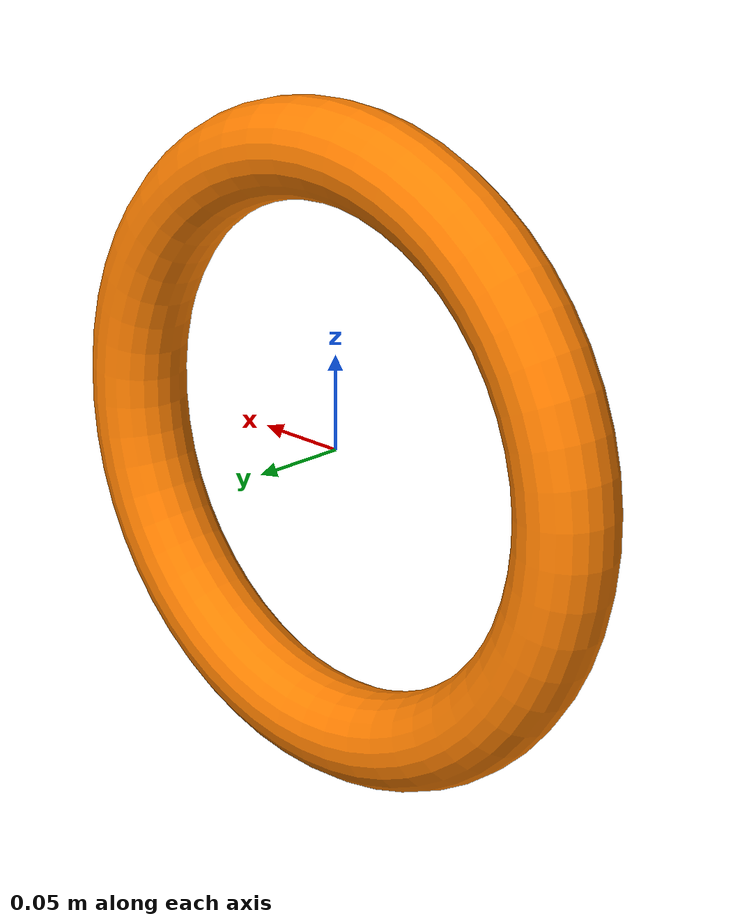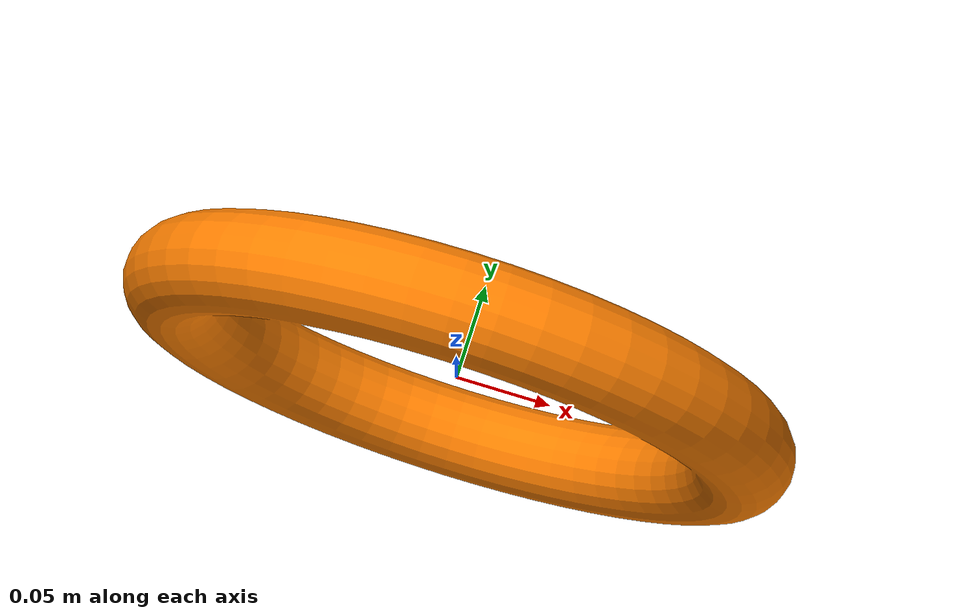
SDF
<?xml version="1.0" encoding="utf-8"?>
<sdf version="1.5">
  <model name="Note">
    <pose>0 0 0 0 0 0</pose>

    <link name="Ring">
      <gravity>1</gravity>
      <self_collide>0</self_collide>
      <pose>0 0 5.98206952465369E-18 0 0 0</pose>
      <must_be_base_link>1</must_be_base_link>
      <velocity_decay>
        <linear>0</linear>
        <angular>0.01</angular>
      </velocity_decay>
      <inertial>
        <mass>0.1</mass>
        <pose>0 0 0 0 0 0</pose>

      </inertial>
      <collision name="Ring_collision">
        <pose>0 0 -5.98206952465369E-18 0 0 0</pose>
        <geometry>
          <mesh>
            <scale>1 1 1</scale>
            <uri>model://Note/meshes/Ring_col.STL</uri>
          </mesh>
        </geometry>
         <surface>
          <contact>
            <ode>
              <kd>1</kd>
              <kp>1e9</kp>
              <min_depth>0.0001</min_depth>
            </ode>
          </contact>
          <friction>
            <ode>
              <mu>1</mu>
              <mu2>1</mu2>
            </ode>
          </friction>
        </surface>
      </collision>
      <visual name="Ring_visual">
        <pose>0 0 -5.98206952465369E-18 0 0 0</pose>
        <material>
          <ambient>1 0.501960784313725 0 1</ambient>
          <diffuse>1 0.501960784313725 0 1</diffuse>
        </material>
        <geometry>
          <mesh>
            <scale>1 1 1</scale>
            <uri>model://Note/meshes/Ring.STL</uri>
          </mesh>
        </geometry>
      </visual>
    </link>
  </model>
</sdf>
